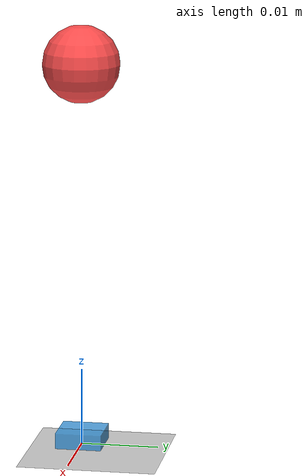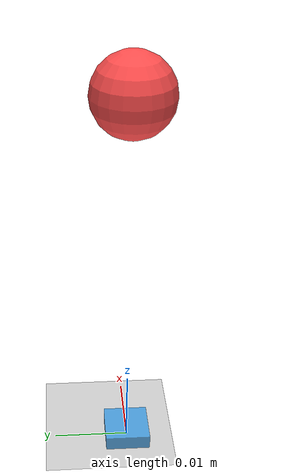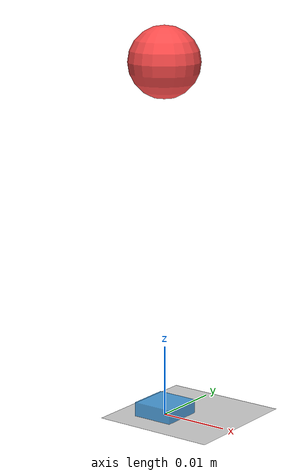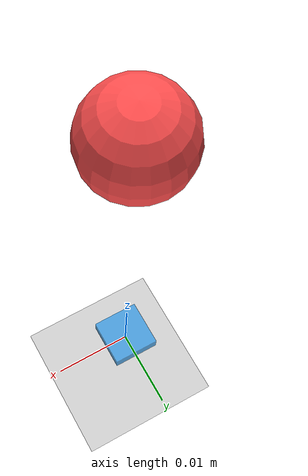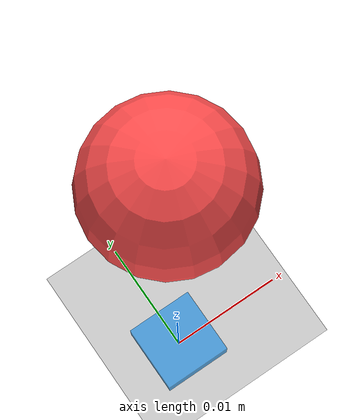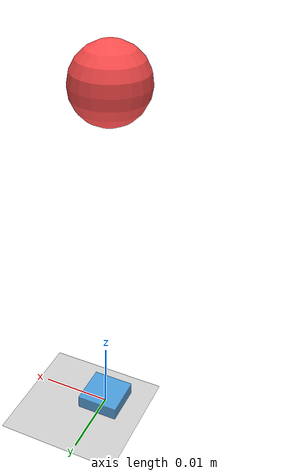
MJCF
<mujoco model="em_sensor_flat">
  <!--
    标准品规格：7×7 测点，43×28×8mm，120Hz
    感知区域：6mm×6mm（7点×1mm间距），位于传感器表面中心
    传感器总输出维度：151（7×7×3=147 + 合力3 + 温度1）
  -->
  <option gravity="0 0 -9.81" timestep="0.00833"
          solver="Newton" integrator="implicit"
          cone="elliptic" impratio="10"/>

  <default>
    <geom condim="3" solref="0.01 0.9"
          solimp="0.9 0.999 0.005" friction="1 0.1 0.01"/>
  </default>

  <worldbody>
    <light pos="0 0 1" dir="0 0 -1"/>
    <geom name="ground" type="plane" size="0.1 0.1 0.01" rgba="0.8 0.8 0.8 1"/>

    <!-- 传感器主体（固定在世界） -->
    <body name="sensor_body" pos="0 0 0.001">
      <!-- 感知面：6mm×6mm（7×7 测点覆盖区域），厚度 1mm -->
      <geom name="sensor_pad" type="box"
            size="0.003 0.003 0.001"
            rgba="0.2 0.6 0.9 0.8" mass="0.05"/>
      <!-- 49 个 cell site（gen_sites.py 生成后插入此处，仅可视化） -->
    </body>

    <!-- 测试用自由落体球（半径 5mm，质量 10g） -->
    <body name="ball" pos="0 0 0.05">
      <joint name="ball_joint" type="free"/>
      <geom name="ball_geom" type="sphere" size="0.005"
            mass="0.01" rgba="1 0.3 0.3 1"/>
    </body>
  </worldbody>

  <sensor>
    <!-- 151 维用户传感器：由 EMSensorCallback 的 mjcb_sensor 回调填充 -->
    <!-- dim = 7*7*3 + 3 + 1 = 151 -->
    <user name="EM_SENSOR" dim="151"
          objtype="geom" objname="sensor_pad"/>
  </sensor>
</mujoco>
